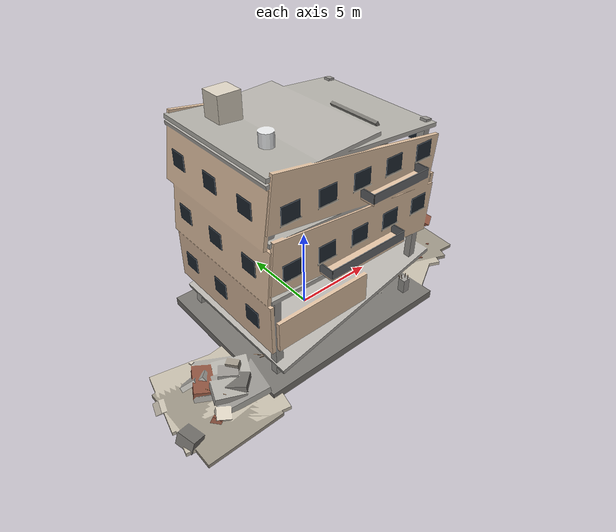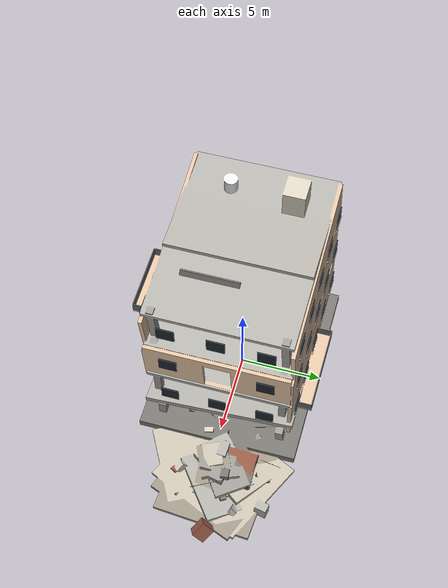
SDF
<?xml version="1.0"?>
<sdf version="1.7">
  <model name="damaged_building">
    <static>true</static>
    <link name="body">
      <visual name="v">
        <geometry><mesh><uri>model://damaged_building/meshes/mesh.dae</uri></mesh></geometry>
      </visual>
    </link>
  </model>
</sdf>
